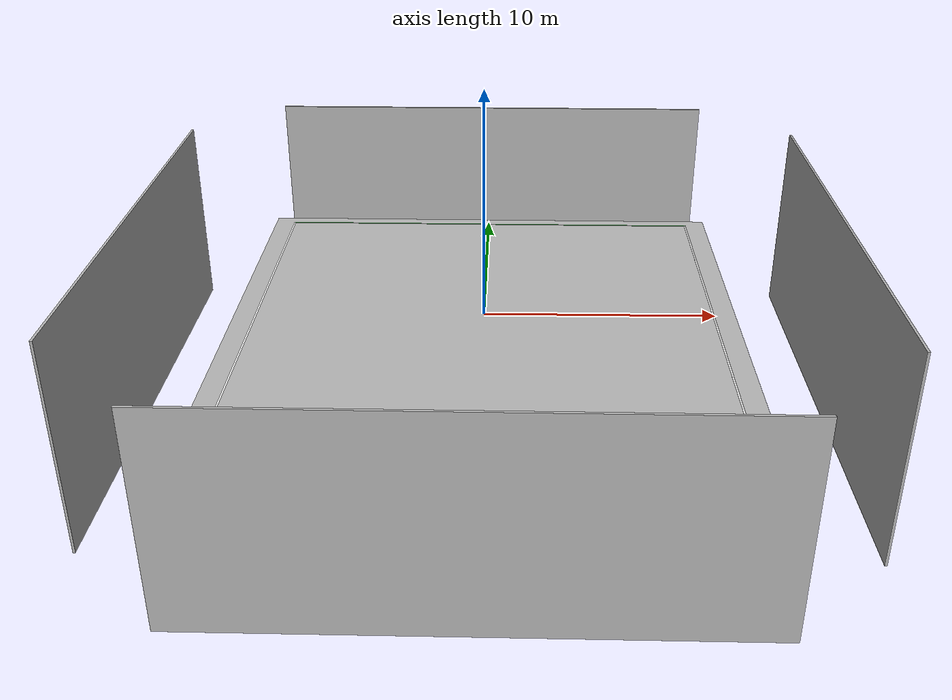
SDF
<?xml version="1.0" encoding="UTF-8" ?>
<sdf version="1.4">
  <world name="default">
    <scene>
      <ambient>0.5 0.5 0.5 1</ambient>
      <background>0.5 0.5 0.5 1</background>
      <shadows>false</shadows>
    </scene>

    <physics type='ode'>
  		<max_step_size>0.01000</max_step_size>
  		<real_time_update_rate>10</real_time_update_rate>

	</physics>

  <light name='00' type='point'>
     <pose frame=''>-10 -10 10 0 -0 0</pose>
      <diffuse>0.5 0.5 0.5 1</diffuse>
      <specular>0.4 0.4 0.4 1</specular>
      <attenuation>
        <range>40</range>
        <constant>0.5</constant>
        <linear>0.349</linear>
        <quadratic>0.00</quadratic>
      </attenuation>
      <cast_shadows>1</cast_shadows>
      <direction>0 0 -1</direction>
    </light>

  <light name='01' type='point'>
     <pose frame=''>-10 -5 10 0 -0 0</pose>
      <diffuse>0.5 0.5 0.5 1</diffuse>
      <specular>0.4 0.4 0.4 1</specular>
      <attenuation>
        <range>40</range>
        <constant>0.5</constant>
        <linear>0.349</linear>
        <quadratic>0.00</quadratic>
      </attenuation>
      <cast_shadows>1</cast_shadows>
      <direction>0 0 -1</direction>
    </light>

  <light name='02' type='point'>
     <pose frame=''>-10 0 10 0 -0 0</pose>
      <diffuse>0.5 0.5 0.5 1</diffuse>
      <specular>0.4 0.4 0.4 1</specular>
      <attenuation>
        <range>40</range>
        <constant>0.5</constant>
        <linear>0.349</linear>
        <quadratic>0.00</quadratic>
      </attenuation>
      <cast_shadows>1</cast_shadows>
      <direction>0 0 -1</direction>
    </light>

  <light name='03' type='point'>
     <pose frame=''>-10 5 10 0 -0 0</pose>
      <diffuse>0.5 0.5 0.5 1</diffuse>
      <specular>0.4 0.4 0.4 1</specular>
      <attenuation>
        <range>40</range>
        <constant>0.5</constant>
        <linear>0.349</linear>
        <quadratic>0.00</quadratic>
      </attenuation>
      <cast_shadows>1</cast_shadows>
      <direction>0 0 -1</direction>
    </light>

  <light name='04' type='point'>
     <pose frame=''>-10 10 10 0 -0 0</pose>
      <diffuse>0.5 0.5 0.5 1</diffuse>
      <specular>0.4 0.4 0.4 1</specular>
      <attenuation>
        <range>40</range>
        <constant>0.5</constant>
        <linear>0.349</linear>
        <quadratic>0.00</quadratic>
      </attenuation>
      <cast_shadows>1</cast_shadows>
      <direction>0 0 -1</direction>
    </light>

  <light name='10' type='point'>
     <pose frame=''>-5 -10 10 0 -0 0</pose>
      <diffuse>0.5 0.5 0.5 1</diffuse>
      <specular>0.4 0.4 0.4 1</specular>
      <attenuation>
        <range>40</range>
        <constant>0.5</constant>
        <linear>0.349</linear>
        <quadratic>0.00</quadratic>
      </attenuation>
      <cast_shadows>1</cast_shadows>
      <direction>0 0 -1</direction>
    </light>

  <light name='11' type='point'>
     <pose frame=''>-5 -5 10 0 -0 0</pose>
      <diffuse>0.5 0.5 0.5 1</diffuse>
      <specular>0.4 0.4 0.4 1</specular>
      <attenuation>
        <range>40</range>
        <constant>0.5</constant>
        <linear>0.349</linear>
        <quadratic>0.00</quadratic>
      </attenuation>
      <cast_shadows>1</cast_shadows>
      <direction>0 0 -1</direction>
    </light>

  <light name='12' type='point'>
     <pose frame=''>-5 0 10 0 -0 0</pose>
      <diffuse>0.5 0.5 0.5 1</diffuse>
      <specular>0.4 0.4 0.4 1</specular>
      <attenuation>
        <range>40</range>
        <constant>0.5</constant>
        <linear>0.349</linear>
        <quadratic>0.00</quadratic>
      </attenuation>
      <cast_shadows>1</cast_shadows>
      <direction>0 0 -1</direction>
    </light>

  <light name='13' type='point'>
     <pose frame=''>-5 5 10 0 -0 0</pose>
      <diffuse>0.5 0.5 0.5 1</diffuse>
      <specular>0.4 0.4 0.4 1</specular>
      <attenuation>
        <range>40</range>
        <constant>0.5</constant>
        <linear>0.349</linear>
        <quadratic>0.00</quadratic>
      </attenuation>
      <cast_shadows>1</cast_shadows>
      <direction>0 0 -1</direction>
    </light>

  <light name='14' type='point'>
     <pose frame=''>-5 10 10 0 -0 0</pose>
      <diffuse>0.5 0.5 0.5 1</diffuse>
      <specular>0.4 0.4 0.4 1</specular>
      <attenuation>
        <range>40</range>
        <constant>0.5</constant>
        <linear>0.349</linear>
        <quadratic>0.00</quadratic>
      </attenuation>
      <cast_shadows>1</cast_shadows>
      <direction>0 0 -1</direction>
    </light>

  <light name='20' type='point'>
     <pose frame=''>0 -10 10 0 -0 0</pose>
      <diffuse>0.5 0.5 0.5 1</diffuse>
      <specular>0.4 0.4 0.4 1</specular>
      <attenuation>
        <range>40</range>
        <constant>0.5</constant>
        <linear>0.349</linear>
        <quadratic>0.00</quadratic>
      </attenuation>
      <cast_shadows>1</cast_shadows>
      <direction>0 0 -1</direction>
    </light>

  <light name='21' type='point'>
     <pose frame=''>0 -5 10 0 -0 0</pose>
      <diffuse>0.5 0.5 0.5 1</diffuse>
      <specular>0.4 0.4 0.4 1</specular>
      <attenuation>
        <range>40</range>
        <constant>0.5</constant>
        <linear>0.349</linear>
        <quadratic>0.00</quadratic>
      </attenuation>
      <cast_shadows>1</cast_shadows>
      <direction>0 0 -1</direction>
    </light>

  <light name='22' type='point'>
     <pose frame=''>0 0 10 0 -0 0</pose>
      <diffuse>0.5 0.5 0.5 1</diffuse>
      <specular>0.4 0.4 0.4 1</specular>
      <attenuation>
        <range>40</range>
        <constant>0.5</constant>
        <linear>0.349</linear>
        <quadratic>0.00</quadratic>
      </attenuation>
      <cast_shadows>1</cast_shadows>
      <direction>0 0 -1</direction>
    </light>

  <light name='23' type='point'>
     <pose frame=''>0 5 10 0 -0 0</pose>
      <diffuse>0.5 0.5 0.5 1</diffuse>
      <specular>0.4 0.4 0.4 1</specular>
      <attenuation>
        <range>40</range>
        <constant>0.5</constant>
        <linear>0.349</linear>
        <quadratic>0.00</quadratic>
      </attenuation>
      <cast_shadows>1</cast_shadows>
      <direction>0 0 -1</direction>
    </light>

  <light name='24' type='point'>
     <pose frame=''>0 10 10 0 -0 0</pose>
      <diffuse>0.5 0.5 0.5 1</diffuse>
      <specular>0.4 0.4 0.4 1</specular>
      <attenuation>
        <range>40</range>
        <constant>0.5</constant>
        <linear>0.349</linear>
        <quadratic>0.00</quadratic>
      </attenuation>
      <cast_shadows>1</cast_shadows>
      <direction>0 0 -1</direction>
    </light>

  <light name='30' type='point'>
     <pose frame=''>5 -10 10 0 -0 0</pose>
      <diffuse>0.5 0.5 0.5 1</diffuse>
      <specular>0.4 0.4 0.4 1</specular>
      <attenuation>
        <range>40</range>
        <constant>0.5</constant>
        <linear>0.349</linear>
        <quadratic>0.00</quadratic>
      </attenuation>
      <cast_shadows>1</cast_shadows>
      <direction>0 0 -1</direction>
    </light>

  <light name='31' type='point'>
     <pose frame=''>5 -5 10 0 -0 0</pose>
      <diffuse>0.5 0.5 0.5 1</diffuse>
      <specular>0.4 0.4 0.4 1</specular>
      <attenuation>
        <range>40</range>
        <constant>0.5</constant>
        <linear>0.349</linear>
        <quadratic>0.00</quadratic>
      </attenuation>
      <cast_shadows>1</cast_shadows>
      <direction>0 0 -1</direction>
    </light>

  <light name='32' type='point'>
     <pose frame=''>5 0 10 0 -0 0</pose>
      <diffuse>0.5 0.5 0.5 1</diffuse>
      <specular>0.4 0.4 0.4 1</specular>
      <attenuation>
        <range>40</range>
        <constant>0.5</constant>
        <linear>0.349</linear>
        <quadratic>0.00</quadratic>
      </attenuation>
      <cast_shadows>1</cast_shadows>
      <direction>0 0 -1</direction>
    </light>

  <light name='33' type='point'>
     <pose frame=''>5 5 10 0 -0 0</pose>
      <diffuse>0.5 0.5 0.5 1</diffuse>
      <specular>0.4 0.4 0.4 1</specular>
      <attenuation>
        <range>40</range>
        <constant>0.5</constant>
        <linear>0.349</linear>
        <quadratic>0.00</quadratic>
      </attenuation>
      <cast_shadows>1</cast_shadows>
      <direction>0 0 -1</direction>
    </light>

  <light name='34' type='point'>
     <pose frame=''>5 10 10 0 -0 0</pose>
      <diffuse>0.5 0.5 0.5 1</diffuse>
      <specular>0.4 0.4 0.4 1</specular>
      <attenuation>
        <range>40</range>
        <constant>0.5</constant>
        <linear>0.349</linear>
        <quadratic>0.00</quadratic>
      </attenuation>
      <cast_shadows>1</cast_shadows>
      <direction>0 0 -1</direction>
    </light>

  <light name='40' type='point'>
     <pose frame=''>10 -10 10 0 -0 0</pose>
      <diffuse>0.5 0.5 0.5 1</diffuse>
      <specular>0.4 0.4 0.4 1</specular>
      <attenuation>
        <range>40</range>
        <constant>0.5</constant>
        <linear>0.349</linear>
        <quadratic>0.00</quadratic>
      </attenuation>
      <cast_shadows>1</cast_shadows>
      <direction>0 0 -1</direction>
    </light>

  <light name='41' type='point'>
     <pose frame=''>10 -5 10 0 -0 0</pose>
      <diffuse>0.5 0.5 0.5 1</diffuse>
      <specular>0.4 0.4 0.4 1</specular>
      <attenuation>
        <range>40</range>
        <constant>0.5</constant>
        <linear>0.349</linear>
        <quadratic>0.00</quadratic>
      </attenuation>
      <cast_shadows>1</cast_shadows>
      <direction>0 0 -1</direction>
    </light>

  <light name='42' type='point'>
     <pose frame=''>10 0 10 0 -0 0</pose>
      <diffuse>0.5 0.5 0.5 1</diffuse>
      <specular>0.4 0.4 0.4 1</specular>
      <attenuation>
        <range>40</range>
        <constant>0.5</constant>
        <linear>0.349</linear>
        <quadratic>0.00</quadratic>
      </attenuation>
      <cast_shadows>1</cast_shadows>
      <direction>0 0 -1</direction>
    </light>

  <light name='43' type='point'>
     <pose frame=''>10 5 10 0 -0 0</pose>
      <diffuse>0.5 0.5 0.5 1</diffuse>
      <specular>0.4 0.4 0.4 1</specular>
      <attenuation>
        <range>40</range>
        <constant>0.5</constant>
        <linear>0.349</linear>
        <quadratic>0.00</quadratic>
      </attenuation>
      <cast_shadows>1</cast_shadows>
      <direction>0 0 -1</direction>
    </light>

  <light name='44' type='point'>
     <pose frame=''>10 10 10 0 -0 0</pose>
      <diffuse>0.5 0.5 0.5 1</diffuse>
      <specular>0.4 0.4 0.4 1</specular>
      <attenuation>
        <range>40</range>
        <constant>0.5</constant>
        <linear>0.349</linear>
        <quadratic>0.00</quadratic>
      </attenuation>
      <cast_shadows>1</cast_shadows>
      <direction>0 0 -1</direction>
    </light>

    <include>
      <uri>model://IARC Floor</uri>
    </include>

   <include>
	<uri>model://red_line</uri>
   </include>

   <include>
	<uri>model://green_line</uri>
   </include>

   <include>
	<uri>model://IARC Gym Floor</uri>
   </include>

   <include>
	<pose> 9.96 0 -0.1 0 0 0 </pose>
	<uri>model://white_line</uri>
   </include>

   <include>
	<pose> -9.96 0 -0.1 0 0 0 </pose>
	<uri>model://white_line</uri>
   </include>

   <include>
	<pose> -15 0 0 0 0 -1.5716 </pose>
	<uri>model://IARC Gym Wall</uri>
   </include>

   <include>
	<pose> 15 0 0 0 0 1.5716 </pose>
	<uri>model://IARC Gym Wall</uri>
   </include>

   <include>
	<pose> 0 -15 0 0 0 0 </pose>
	<uri>model://IARC Gym Wall</uri>
   </include>

   <include>
	<pose> 0 15 0 0 0 0 </pose>
	<uri>model://IARC Gym Wall</uri>
   </include>

  </world>
</sdf>

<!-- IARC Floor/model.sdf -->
<sdf version="1.5">
  <model name="IARC Floor">
    <pose> 0 0 -0.1 0 0 0 </pose>
    <static>true</static>
    <link name="link">
      <collision name="collision">
        <geometry>
          <box>
            <size>20 20 .1</size>
          </box>
        </geometry>
      </collision>
      <visual name="visual">
        <cast_shadows>false</cast_shadows>
        <geometry>
          <box>
            <size>20 20 .1</size>
          </box>
        </geometry>
        <material>
          <script>
            <uri>model://IARC Floor/materials/scripts</uri>
            <uri>model://IARC Floor/materials/textures</uri>
            <name>vrc/GymFloor</name>
          </script>
	  <pose> 0.5 0.5 0 0 0 0 </pose>
        </material>
      </visual>
    </link>
  </model>
</sdf>

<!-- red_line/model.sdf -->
<sdf version="1.5">
  <model name="red_line">
    <pose> 0 -9.96 -0.1 0 0 0 </pose>
    <static>true</static>
    <link name="link">
      <collision name="collision">
        <geometry>
          <box>
            <size>20 0.08 .1</size>
          </box>
        </geometry>
      </collision>
      <visual name="visual">
        <cast_shadows>false</cast_shadows>
        <geometry>
          <box>
            <size>20 0.08 0.101</size>
          </box>
        </geometry>
        <material>
          <script>
            <uri>model://red_line/materials/scripts</uri>
            <uri>model://red_line/materials/textures</uri>
            <name>vrc/red</name>
          </script>
        </material>
      </visual>
    </link>
  </model>
</sdf>

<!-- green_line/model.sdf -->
<sdf version="1.5">
  <model name="green_line">
   <pose> 0 9.96 -0.1 0 0 0 </pose>
    <static>true</static>
    <link name="link">
      <collision name="collision">
        <geometry>
          <box>
            <size>20 0.08 .1</size>
          </box>
        </geometry>
      </collision>
      <visual name="visual">
        <cast_shadows>false</cast_shadows>
        <geometry>
          <box>
            <size>20 0.08 0.101</size>
          </box>
        </geometry>
        <material>
          <script>
            <uri>model://green_line/materials/scripts</uri>
            <uri>model://green_line/materials/textures</uri>
            <name>vrc/green</name>
          </script>
        </material>
      </visual>
    </link>
  </model>
</sdf>

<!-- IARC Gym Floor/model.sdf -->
<sdf version="1.5">
  <model name="IARC Gym Floor">
    <pose> 0 0 -0.3 0 0 0 </pose>
    <static>true</static>
    <link name="link">
      <collision name="collision">
        <geometry>
          <box>
            <size>22 22 .1</size>
          </box>
        </geometry>
      </collision>
      <visual name="visual">
        <cast_shadows>false</cast_shadows>
        <geometry>
          <box>
            <size>22 22 .1</size>
          </box>
        </geometry>
        <material>
          <script>
            <uri>model://IARC Gym Floor/materials/scripts</uri>
            <uri>model://IARC Gym Floor/materials/textures</uri>
            <name>vrc/GymBase</name>
          </script>
        </material>
      </visual>
    </link>
  </model>
</sdf>

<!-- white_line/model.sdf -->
<sdf version="1.5">
  <model name="white_line">
    <static>true</static>
    <link name="link">
      <collision name="collision">
        <geometry>
          <box>
            <size>0.08 20 0.1</size>
          </box>
        </geometry>
      </collision>
      <visual name="visual">
        <cast_shadows>false</cast_shadows>
        <geometry>
          <box>
            <size>0.08 20 0.101</size>
          </box>
        </geometry>
        <material>
          <script>
            <uri>model://white_line/materials/scripts</uri>
            <uri>model://white_line/materials/textures</uri>
            <name>vrc/white</name>
          </script>
        </material>
      </visual>
    </link>
  </model>
</sdf>

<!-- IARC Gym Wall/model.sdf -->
<sdf version="1.5">
  <model name="IARC Gym Wall">
    <static>true</static>
    <link name="link">
      <collision name="collision">
        <geometry>
          <box>
            <size>22 0.1 9</size>
          </box>
        </geometry>
      </collision>
      <visual name="visual">
        <cast_shadows>false</cast_shadows>
        <geometry>
          <box>
            <size>22 0.1 9</size>
          </box>
        </geometry>
        <material>
          <script>
            <uri>model://IARC Gym Wall/materials/scripts</uri>
            <uri>model://IARC Gym Wall/materials/textures</uri>
            <name>vrc/GymWall</name>
          </script>
        </material>
      </visual>
    </link>
  </model>
</sdf>
